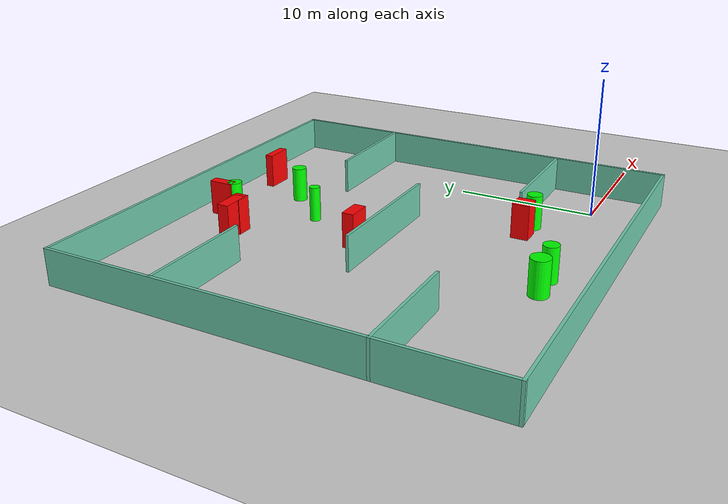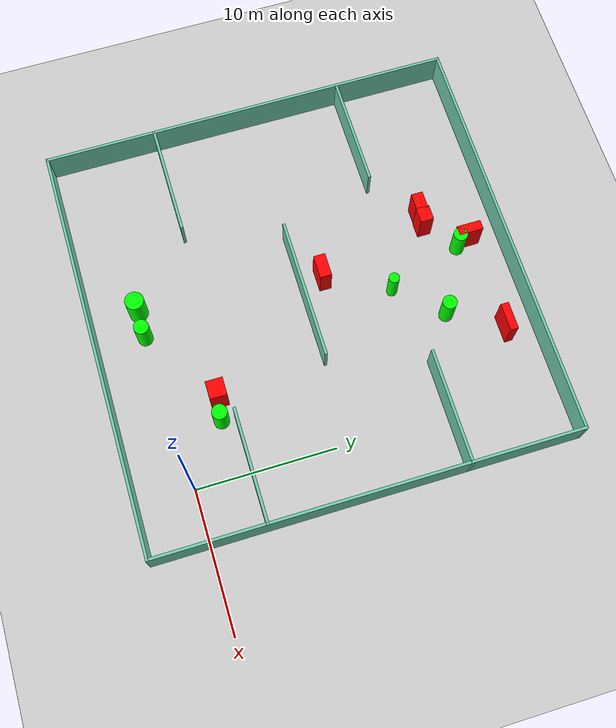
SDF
<sdf version="1.7">
 <world name="default">
  <light name="sun" type="directional">
   <pose>0 0 10 0 -0 0</pose>
   <diffuse>0.8 0.8 0.8 1</diffuse>
   <specular>0.2 0.2 0.2 1</specular>
   <attenuation>
    <range>1000</range>
    <constant>0.9</constant>
    <linear>0.01</linear>
    <quadratic>0.001</quadratic>
   </attenuation>
   <direction>-0.5 0.1 -0.9</direction>
   <spot><inner_angle>0</inner_angle><outer_angle>0</outer_angle><falloff>0</falloff></spot>
  </light>
  <model name="ground_plane">
   <static>1</static>
   <link name="link">
    <collision name="collision">
     <geometry><plane><normal>0 0 1</normal><size>100 100</size></plane></geometry>
     <surface>
      <contact><collide_bitmask>65535</collide_bitmask></contact>
      <friction><ode><mu>100</mu><mu2>50</mu2></ode></friction>
     </surface>
    </collision>
    <visual name="visual">
     <cast_shadows>0</cast_shadows>
     <geometry><plane><normal>0 0 1</normal><size>100 100</size></plane></geometry>
     <material>
      <script><uri>file://media/materials/scripts/gazebo.material</uri><name>Gazebo/Grey</name></script>
     </material>
    </visual>
   </link>
  </model>
  <gravity>0 0 -9.8</gravity>
  <magnetic_field>6e-06 2.3e-05 -4.2e-05</magnetic_field>
  <atmosphere type="adiabatic"/>
  <physics type="ode">
   <max_step_size>0.001</max_step_size>
   <real_time_factor>1</real_time_factor>
   <real_time_update_rate>1000</real_time_update_rate>
  </physics>
  <scene><ambient>0.4 0.4 0.4 1</ambient><background>0.7 0.7 0.7 1</background><shadows>1</shadows></scene>
  <spherical_coordinates>
   <surface_model>EARTH_WGS84</surface_model>
   <latitude_deg>0</latitude_deg>
   <longitude_deg>0</longitude_deg>
   <elevation>0</elevation>
   <heading_deg>0</heading_deg>
  </spherical_coordinates>
  <model name="my_base_walls">
   <link name="Wall_10">
    <collision name="Wall_10_Collision">
     <geometry><box><size>8.2 0.2 2.5</size></box></geometry>
     <pose>0 0 1.25 0 -0 0</pose>
    </collision>
    <visual name="Wall_10_Visual">
     <pose>0 0 1.25 0 -0 0</pose>
     <geometry><box><size>8.2 0.2 2.5</size></box></geometry>
     <material>
      <script><uri>file://media/materials/scripts/gazebo.material</uri><name>Gazebo/Grey</name></script>
      <ambient>0.435294 0.796078 0.67451 1</ambient>
     </material>
     <meta><layer>0</layer></meta>
    </visual>
    <pose>-11 -7 0 0 -0 0</pose>
   </link>
   <link name="Wall_12">
    <collision name="Wall_12_Collision">
     <geometry><box><size>8.2 0.2 2.5</size></box></geometry>
     <pose>0 0 1.25 0 -0 0</pose>
    </collision>
    <visual name="Wall_12_Visual">
     <pose>0 0 1.25 0 -0 0</pose>
     <geometry><box><size>8.2 0.2 2.5</size></box></geometry>
     <material>
      <script><uri>file://media/materials/scripts/gazebo.material</uri><name>Gazebo/Grey</name></script>
      <ambient>0.435294 0.796078 0.67451 1</ambient>
     </material>
     <meta><layer>0</layer></meta>
    </visual>
    <pose>-11 7 0 0 -0 0</pose>
   </link>
   <link name="Wall_14">
    <collision name="Wall_14_Collision">
     <geometry><box><size>8.2 0.2 2.5</size></box></geometry>
     <pose>0 0 1.25 0 -0 0</pose>
    </collision>
    <visual name="Wall_14_Visual">
     <pose>0 0 1.25 0 -0 0</pose>
     <geometry><box><size>8.2 0.2 2.5</size></box></geometry>
     <material>
      <script><uri>file://media/materials/scripts/gazebo.material</uri><name>Gazebo/Grey</name></script>
      <ambient>0.435294 0.796078 0.67451 1</ambient>
     </material>
     <meta><layer>0</layer></meta>
    </visual>
    <pose>11 7 0 0 -0 3.14159</pose>
   </link>
   <link name="Wall_16">
    <collision name="Wall_16_Collision">
     <geometry><box><size>10.2 0.2 2.5</size></box></geometry>
     <pose>0 0 1.25 0 -0 0</pose>
    </collision>
    <visual name="Wall_16_Visual">
     <pose>0 0 1.25 0 -0 0</pose>
     <geometry><box><size>10.2 0.2 2.5</size></box></geometry>
     <material>
      <script><uri>file://media/materials/scripts/gazebo.material</uri><name>Gazebo/Grey</name></script>
      <ambient>0.435294 0.796078 0.67451 1</ambient>
     </material>
     <meta><layer>0</layer></meta>
    </visual>
    <pose>0 0 0 0 -0 3.14159</pose>
   </link>
   <link name="Wall_2">
    <collision name="Wall_2_Collision">
     <geometry><box><size>30.2 0.2 2.5</size></box></geometry>
     <pose>0 0 1.25 0 -0 0</pose>
    </collision>
    <visual name="Wall_2_Visual">
     <pose>0 0 1.25 0 -0 0</pose>
     <geometry><box><size>30.2 0.2 2.5</size></box></geometry>
     <material>
      <script><uri>file://media/materials/scripts/gazebo.material</uri><name>Gazebo/Grey</name></script>
      <ambient>0.435294 0.796078 0.67451 1</ambient>
     </material>
     <meta><layer>0</layer></meta>
    </visual>
    <pose>0 -15 0 0 -0 3.14159</pose>
   </link>
   <link name="Wall_3">
    <collision name="Wall_3_Collision">
     <geometry><box><size>30.2 0.2 2.5</size></box></geometry>
     <pose>0 0 1.25 0 -0 0</pose>
    </collision>
    <visual name="Wall_3_Visual">
     <pose>0 0 1.25 0 -0 0</pose>
     <geometry><box><size>30.2 0.2 2.5</size></box></geometry>
     <material>
      <script><uri>file://media/materials/scripts/gazebo.material</uri><name>Gazebo/Grey</name></script>
      <ambient>0.435294 0.796078 0.67451 1</ambient>
     </material>
     <meta><layer>0</layer></meta>
    </visual>
    <pose>-15 0 0 0 -0 1.5708</pose>
   </link>
   <link name="Wall_4">
    <collision name="Wall_4_Collision">
     <geometry><box><size>30.2 0.2 2.5</size></box></geometry>
     <pose>0 0 1.25 0 -0 0</pose>
    </collision>
    <visual name="Wall_4_Visual">
     <pose>0 0 1.25 0 -0 0</pose>
     <geometry><box><size>30.2 0.2 2.5</size></box></geometry>
     <material>
      <script><uri>file://media/materials/scripts/gazebo.material</uri><name>Gazebo/Grey</name></script>
      <ambient>0.435294 0.796078 0.67451 1</ambient>
     </material>
     <meta><layer>0</layer></meta>
    </visual>
    <pose>0 15 0 0 -0 0</pose>
   </link>
   <link name="Wall_6">
    <collision name="Wall_6_Collision">
     <geometry><box><size>30.2 0.2 2.5</size></box></geometry>
     <pose>0 0 1.25 0 -0 0</pose>
    </collision>
    <visual name="Wall_6_Visual">
     <pose>0 0 1.25 0 -0 0</pose>
     <geometry><box><size>30.2 0.2 2.5</size></box></geometry>
     <material>
      <script><uri>file://media/materials/scripts/gazebo.material</uri><name>Gazebo/Grey</name></script>
      <ambient>0.435294 0.796078 0.67451 1</ambient>
     </material>
     <meta><layer>0</layer></meta>
    </visual>
    <pose>15 0 0 0 -0 1.5708</pose>
   </link>
   <link name="Wall_8">
    <collision name="Wall_8_Collision">
     <geometry><box><size>8.2 0.2 2.5</size></box></geometry>
     <pose>0 0 1.25 0 -0 0</pose>
    </collision>
    <visual name="Wall_8_Visual">
     <pose>0 0 1.25 0 -0 0</pose>
     <geometry><box><size>8.2 0.2 2.5</size></box></geometry>
     <material>
      <script><uri>file://media/materials/scripts/gazebo.material</uri><name>Gazebo/Grey</name></script>
      <ambient>0.435294 0.796078 0.67451 1</ambient>
     </material>
     <meta><layer>0</layer></meta>
    </visual>
    <pose>11 -7 0 0 -0 3.14159</pose>
   </link>
   <static>1</static>
   <pose>-11 11 0 0 -0 0</pose>
  </model>
  <model name="cylinder1">
   <static>1</static>
   <link name="link">
    <inertial>
     <mass>1</mass>
     <inertia><ixx>0.5</ixx><ixy>0</ixy><ixz>0</ixz><iyy>0.5</iyy><iyz>0</iyz><izz>1</izz></inertia>
    </inertial>
    <collision name="collision">
     <geometry><cylinder><radius>0.5096500192350311</radius><length>2.5</length></cylinder></geometry>
    </collision>
    <visual name="visual">
     <geometry><cylinder><radius>0.5096500192350311</radius><length>2.5</length></cylinder></geometry>
     <material>
      <ambient>0 1 0 1</ambient>
      <diffuse>0 1 0 1</diffuse>
      <specular>0.1 0.1 0.1 1</specular>
      <emissive>0 0 0 0</emissive>
     </material>
    </visual>
   </link>
   <pose>-11.719444361428462 22.786189821033894 1.25 0 0 0</pose>
  </model>
  <model name="cylinder2">
   <static>1</static>
   <link name="link">
    <inertial>
     <mass>1</mass>
     <inertia><ixx>0.5</ixx><ixy>0</ixy><ixz>0</ixz><iyy>0.5</iyy><iyz>0</iyz><izz>1</izz></inertia>
    </inertial>
    <collision name="collision">
     <geometry><cylinder><radius>0.5373895814070135</radius><length>2.5</length></cylinder></geometry>
    </collision>
    <visual name="visual">
     <geometry><cylinder><radius>0.5373895814070135</radius><length>2.5</length></cylinder></geometry>
     <material>
      <ambient>0 1 0 1</ambient>
      <diffuse>0 1 0 1</diffuse>
      <specular>0.1 0.1 0.1 1</specular>
      <emissive>0 0 0 0</emissive>
     </material>
    </visual>
   </link>
   <pose>-11.46338252164772 -0.5721575148996987 1.25 0 0 0</pose>
  </model>
  <model name="cylinder3">
   <static>1</static>
   <link name="link">
    <inertial>
     <mass>1</mass>
     <inertia><ixx>0.5</ixx><ixy>0</ixy><ixz>0</ixz><iyy>0.5</iyy><iyz>0</iyz><izz>1</izz></inertia>
    </inertial>
    <collision name="collision">
     <geometry><cylinder><radius>0.5127684623682626</radius><length>2.5</length></cylinder></geometry>
    </collision>
    <visual name="visual">
     <geometry><cylinder><radius>0.5127684623682626</radius><length>2.5</length></cylinder></geometry>
     <material>
      <ambient>0 1 0 1</ambient>
      <diffuse>0 1 0 1</diffuse>
      <specular>0.1 0.1 0.1 1</specular>
      <emissive>0 0 0 0</emissive>
     </material>
    </visual>
   </link>
   <pose>-7.0545541484025485 20.317701971922176 1.25 0 0 0</pose>
  </model>
  <model name="cylinder4">
   <static>1</static>
   <link name="link">
    <inertial>
     <mass>1</mass>
     <inertia><ixx>0.5</ixx><ixy>0</ixy><ixz>0</ixz><iyy>0.5</iyy><iyz>0</iyz><izz>1</izz></inertia>
    </inertial>
    <collision name="collision">
     <geometry><cylinder><radius>0.5434469708228116</radius><length>2.5</length></cylinder></geometry>
    </collision>
    <visual name="visual">
     <geometry><cylinder><radius>0.5434469708228116</radius><length>2.5</length></cylinder></geometry>
     <material>
      <ambient>0 1 0 1</ambient>
      <diffuse>0 1 0 1</diffuse>
      <specular>0.1 0.1 0.1 1</specular>
      <emissive>0 0 0 0</emissive>
     </material>
    </visual>
   </link>
   <pose>-4.079532894688146 2.9887615333348085 1.25 0 0 0</pose>
  </model>
  <model name="cylinder5">
   <static>1</static>
   <link name="link">
    <inertial>
     <mass>1</mass>
     <inertia><ixx>0.5</ixx><ixy>0</ixy><ixz>0</ixz><iyy>0.5</iyy><iyz>0</iyz><izz>1</izz></inertia>
    </inertial>
    <collision name="collision">
     <geometry><cylinder><radius>0.670142412253169</radius><length>2.5</length></cylinder></geometry>
    </collision>
    <visual name="visual">
     <geometry><cylinder><radius>0.670142412253169</radius><length>2.5</length></cylinder></geometry>
     <material>
      <ambient>0 1 0 1</ambient>
      <diffuse>0 1 0 1</diffuse>
      <specular>0.1 0.1 0.1 1</specular>
      <emissive>0 0 0 0</emissive>
     </material>
    </visual>
   </link>
   <pose>-13.46476064329827 -0.5694879063763354 1.25 0 0 0</pose>
  </model>
  <model name="cylinder6">
   <static>1</static>
   <link name="link">
    <inertial>
     <mass>1</mass>
     <inertia><ixx>0.5</ixx><ixy>0</ixy><ixz>0</ixz><iyy>0.5</iyy><iyz>0</iyz><izz>1</izz></inertia>
    </inertial>
    <collision name="collision">
     <geometry><cylinder><radius>0.3796738069319452</radius><length>2.5</length></cylinder></geometry>
    </collision>
    <visual name="visual">
     <geometry><cylinder><radius>0.3796738069319452</radius><length>2.5</length></cylinder></geometry>
     <material>
      <ambient>0 1 0 1</ambient>
      <diffuse>0 1 0 1</diffuse>
      <specular>0.1 0.1 0.1 1</specular>
      <emissive>0 0 0 0</emissive>
     </material>
    </visual>
   </link>
   <pose>-9.893583787342585 17.206954721153195 1.25 0 0 0</pose>
  </model>
  <model name="box1">
   <static>1</static>
   <link name="link">
    <inertial>
     <mass>1</mass>
     <inertia><ixx>0.083</ixx><ixy>0</ixy><ixz>0</ixz><iyy>0.083</iyy><iyz>0</iyz><izz>0.083</izz></inertia>
    </inertial>
    <collision name="collision">
     <geometry><box><size>0.6791486777025186 1.7343378489005803 2.5</size></box></geometry>
    </collision>
    <visual name="visual">
     <geometry><box><size>0.6791486777025186 1.7343378489005803 2.5</size></box></geometry>
     <material>
      <ambient>1 0 0 1</ambient>
      <diffuse>1 0 0 1</diffuse>
      <specular>0.1 0.1 0.1 1</specular>
      <emissive>0 0 0 0</emissive>
     </material>
    </visual>
    <sensor name="my_contact" type="contact">
     <contact><collision>box_collision</collision><topic>__default_topic__</topic></contact>
    </sensor>
   </link>
   <pose>-12.003886164761305 23.582747639288034 1.25 0 0 0</pose>
  </model>
  <model name="box2">
   <static>1</static>
   <link name="link">
    <inertial>
     <mass>1</mass>
     <inertia><ixx>0.083</ixx><ixy>0</ixy><ixz>0</ixz><iyy>0.083</iyy><iyz>0</iyz><izz>0.083</izz></inertia>
    </inertial>
    <collision name="collision">
     <geometry><box><size>1.683718808887819 0.8471845526006415 2.5</size></box></geometry>
    </collision>
    <visual name="visual">
     <geometry><box><size>1.683718808887819 0.8471845526006415 2.5</size></box></geometry>
     <material>
      <ambient>1 0 0 1</ambient>
      <diffuse>1 0 0 1</diffuse>
      <specular>0.1 0.1 0.1 1</specular>
      <emissive>0 0 0 0</emissive>
     </material>
    </visual>
    <sensor name="my_contact" type="contact">
     <contact><collision>box_collision</collision><topic>__default_topic__</topic></contact>
    </sensor>
   </link>
   <pose>-12.233638727739537 12.69489800755129 1.25 0 0 0</pose>
  </model>
  <model name="box3">
   <static>1</static>
   <link name="link">
    <inertial>
     <mass>1</mass>
     <inertia><ixx>0.083</ixx><ixy>0</ixy><ixz>0</ixz><iyy>0.083</iyy><iyz>0</iyz><izz>0.083</izz></inertia>
    </inertial>
    <collision name="collision">
     <geometry><box><size>1.9823733201018634 0.5776039481012638 2.5</size></box></geometry>
    </collision>
    <visual name="visual">
     <geometry><box><size>1.9823733201018634 0.5776039481012638 2.5</size></box></geometry>
     <material>
      <ambient>1 0 0 1</ambient>
      <diffuse>1 0 0 1</diffuse>
      <specular>0.1 0.1 0.1 1</specular>
      <emissive>0 0 0 0</emissive>
     </material>
    </visual>
    <sensor name="my_contact" type="contact">
     <contact><collision>box_collision</collision><topic>__default_topic__</topic></contact>
    </sensor>
   </link>
   <pose>-4.884166594801098 23.889126921734388 1.25 0 0 0</pose>
  </model>
  <model name="box4">
   <static>1</static>
   <link name="link">
    <inertial>
     <mass>1</mass>
     <inertia><ixx>0.083</ixx><ixy>0</ixy><ixz>0</ixz><iyy>0.083</iyy><iyz>0</iyz><izz>0.083</izz></inertia>
    </inertial>
    <collision name="collision">
     <geometry><box><size>1.9863481470431688 0.8355448373657401 2.5</size></box></geometry>
    </collision>
    <visual name="visual">
     <geometry><box><size>1.9863481470431688 0.8355448373657401 2.5</size></box></geometry>
     <material>
      <ambient>1 0 0 1</ambient>
      <diffuse>1 0 0 1</diffuse>
      <specular>0.1 0.1 0.1 1</specular>
      <emissive>0 0 0 0</emissive>
     </material>
    </visual>
    <sensor name="my_contact" type="contact">
     <contact><collision>box_collision</collision><topic>__default_topic__</topic></contact>
    </sensor>
   </link>
   <pose>-14.688192594523187 20.836676838933002 1.25 0 0 0</pose>
  </model>
  <model name="box5">
   <static>1</static>
   <link name="link">
    <inertial>
     <mass>1</mass>
     <inertia><ixx>0.083</ixx><ixy>0</ixy><ixz>0</ixz><iyy>0.083</iyy><iyz>0</iyz><izz>0.083</izz></inertia>
    </inertial>
    <collision name="collision">
     <geometry><box><size>1.2980579520396376 1.2278509897119165 2.5</size></box></geometry>
    </collision>
    <visual name="visual">
     <geometry><box><size>1.2980579520396376 1.2278509897119165 2.5</size></box></geometry>
     <material>
      <ambient>1 0 0 1</ambient>
      <diffuse>1 0 0 1</diffuse>
      <specular>0.1 0.1 0.1 1</specular>
      <emissive>0 0 0 0</emissive>
     </material>
    </visual>
    <sensor name="my_contact" type="contact">
     <contact><collision>box_collision</collision><topic>__default_topic__</topic></contact>
    </sensor>
   </link>
   <pose>-5.734407999030884 3.2034450314077887 1.25 0 0 0</pose>
  </model>
  <model name="box6">
   <static>1</static>
   <link name="link">
    <inertial>
     <mass>1</mass>
     <inertia><ixx>0.083</ixx><ixy>0</ixy><ixz>0</ixz><iyy>0.083</iyy><iyz>0</iyz><izz>0.083</izz></inertia>
    </inertial>
    <collision name="collision">
     <geometry><box><size>1.1004669221423198 0.9661864075653712 2.5</size></box></geometry>
    </collision>
    <visual name="visual">
     <geometry><box><size>1.1004669221423198 0.9661864075653712 2.5</size></box></geometry>
     <material>
      <ambient>1 0 0 1</ambient>
      <diffuse>1 0 0 1</diffuse>
      <specular>0.1 0.1 0.1 1</specular>
      <emissive>0 0 0 0</emissive>
     </material>
    </visual>
    <sensor name="my_contact" type="contact">
     <contact><collision>box_collision</collision><topic>__default_topic__</topic></contact>
    </sensor>
   </link>
   <pose>-13.970289615709458 20.865394998915193 1.25 0 0 0</pose>
  </model>
 </world>
</sdf>
